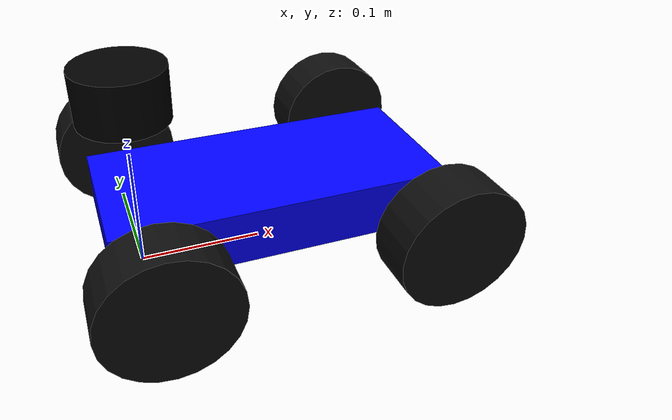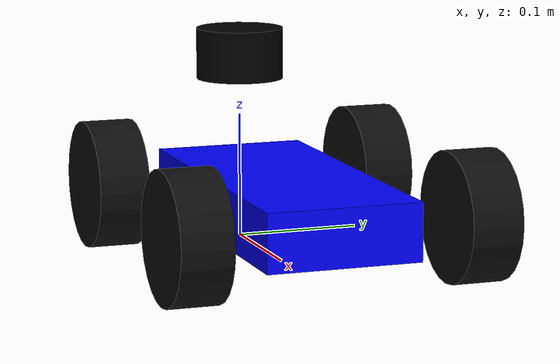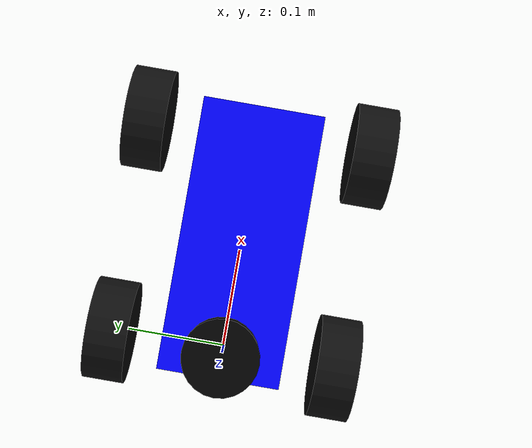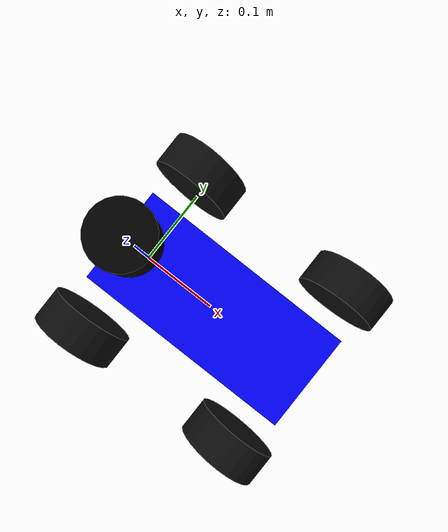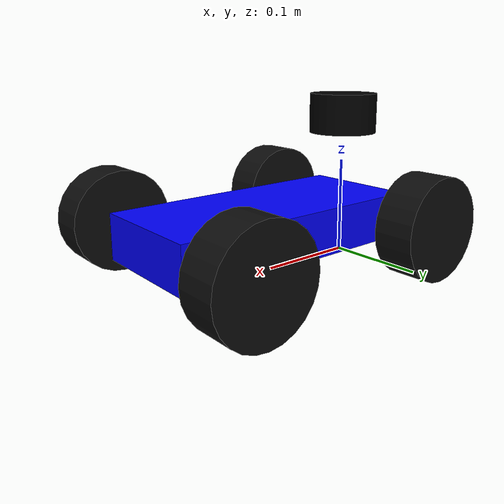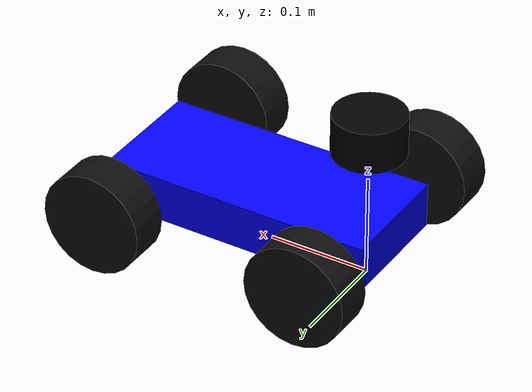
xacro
<?xml version="1.0"?>

<robot name="rl_robot"
       xmlns:xacro="http://www.ros.org/wiki/xacro">

  <xacro:arg name="drive_mode" default="diff"/>
  <xacro:property name="drive_mode" value="$(arg drive_mode)"/>

  <xacro:property name="chassis_length" value="0.270"/>
  <xacro:property name="chassis_width"  value="0.1205"/>
  <xacro:property name="chassis_height" value="0.045"/>
  <xacro:property name="chassis_mass"   value="2.5"/>

  <!-- MEASURED -->
  <xacro:property name="wheelbase"      value="0.213"/>
  <xacro:property name="track_width"    value="0.222"/>
  <xacro:property name="wheel_radius"   value="0.0505"/>

  <xacro:property name="wheel_width"    value="0.040"/>
  <xacro:property name="wheel_mass"     value="0.20"/>

  <!-- STILL TO VERIFY AT THE KNUCKLE, NOT THE SERVO.
         25 deg -> R = 0.457 m
         30 deg -> R = 0.369 m   (value used)
         35 deg -> R = 0.304 m -->
  <xacro:property name="max_steer"      value="0.5236"/>

  <xacro:property name="ground_clearance" value="0.025"/>

  <!-- Plate centre relative to the rear axle. Overhang is
       (0.270 - 0.213)/2 = 0.0285 m at each end, so the plate
       centre sits wheelbase/2 ahead of the rear axle. -->
  <xacro:property name="chassis_x" value="${wheelbase/2}"/>

  <xacro:property name="chassis_z"
                  value="${ground_clearance - wheel_radius + chassis_height/2}"/>
  <xacro:property name="chassis_top"
                  value="${chassis_z + chassis_height/2}"/>

  <!-- =====================================================
       LIDAR GEOMETRY - RPLIDAR A1M8
       ===================================================== -->

  <xacro:property name="lidar_radius" value="0.035"/>
  <xacro:property name="lidar_height" value="0.041"/>
  <xacro:property name="lidar_mass"   value="0.17"/>

  <!-- Must clear the 101 mm tyres (tops at 0.1010 m). 0.060 m
       puts the beam plane at 0.1505 m, ~50 mm clear. Maze walls
       are 0.50 m tall, so that is fine. -->
  <xacro:property name="lidar_standoff" value="0.060"/>

  <xacro:property name="lidar_z"
                  value="${chassis_top + lidar_standoff + lidar_height/2}"/>

  <!-- A1M8 is ~1% of range. Set 0.0 for noise-free scans. -->
  <xacro:property name="lidar_noise_stddev" value="0.01"/>

  <!-- =====================================================
       INERTIA MACROS
       ===================================================== -->

  <xacro:macro name="box_inertia" params="m x y z x0:=0 y0:=0 z0:=0">
    <inertial>
      <origin xyz="${x0} ${y0} ${z0}" rpy="0 0 0"/>
      <mass value="${m}"/>
      <inertia
        ixx="${m*(y*y + z*z)/12.0}"
        ixy="0.0"
        ixz="0.0"
        iyy="${m*(x*x + z*z)/12.0}"
        iyz="0.0"
        izz="${m*(x*x + y*y)/12.0}"/>
    </inertial>
  </xacro:macro>

  <xacro:macro name="wheel_inertia" params="m r l">
    <inertial>
      <origin xyz="0 0 0" rpy="1.5708 0 0"/>
      <mass value="${m}"/>
      <inertia
        ixx="${m*(3.0*r*r + l*l)/12.0}"
        ixy="0.0"
        ixz="0.0"
        iyy="${m*(3.0*r*r + l*l)/12.0}"
        iyz="0.0"
        izz="${m*r*r/2.0}"/>
    </inertial>
  </xacro:macro>

  <!-- =====================================================
       BASE FOOTPRINT (on the rear axle, projected to ground)
       ===================================================== -->

  <link name="base_footprint"/>

  <joint name="base_footprint_joint" type="fixed">
    <parent link="base_footprint"/>
    <child  link="base_link"/>
    <origin xyz="0 0 ${wheel_radius}" rpy="0 0 0"/>
  </joint>

  <!-- =====================================================
       BASE LINK
       ===================================================== -->

  <link name="base_link">

    <visual>
      <origin xyz="${chassis_x} 0 ${chassis_z}" rpy="0 0 0"/>
      <geometry>
        <box size="${chassis_length} ${chassis_width} ${chassis_height}"/>
      </geometry>
      <material name="blue">
        <color rgba="0 0 1 1"/>
      </material>
    </visual>

    <collision>
      <origin xyz="${chassis_x} 0 ${chassis_z}" rpy="0 0 0"/>
      <geometry>
        <box size="${chassis_length} ${chassis_width} ${chassis_height}"/>
      </geometry>
    </collision>

    <xacro:box_inertia
      m="${chassis_mass}"
      x="${chassis_length}"
      y="${chassis_width}"
      z="${chassis_height}"
      x0="${chassis_x}"
      z0="${chassis_z}"/>

  </link>

  <!-- =====================================================
       WHEEL / KNUCKLE MACROS
       ===================================================== -->

  <xacro:macro name="wheel_link" params="name">
    <link name="${name}_link">

      <visual>
        <origin xyz="0 0 0" rpy="1.5708 0 0"/>
        <geometry>
          <cylinder radius="${wheel_radius}" length="${wheel_width}"/>
        </geometry>
        <material name="black">
          <color rgba="0.05 0.05 0.05 1"/>
        </material>
      </visual>

      <collision>
        <origin xyz="0 0 0" rpy="1.5708 0 0"/>
        <geometry>
          <cylinder radius="${wheel_radius}" length="${wheel_width}"/>
        </geometry>
      </collision>

      <xacro:wheel_inertia
        m="${wheel_mass}"
        r="${wheel_radius}"
        l="${wheel_width}"/>

    </link>
  </xacro:macro>

  <xacro:macro name="knuckle_link" params="name">
    <link name="${name}_link">
      <visual>
        <origin xyz="0 0 0" rpy="0 0 0"/>
        <geometry>
          <box size="0.02 0.02 0.03"/>
        </geometry>
        <material name="knuckle_gray">
          <color rgba="0.4 0.4 0.4 1"/>
        </material>
      </visual>
      <xacro:box_inertia m="0.05" x="0.02" y="0.02" z="0.03"/>
    </link>
  </xacro:macro>

  <xacro:wheel_link name="front_left_wheel"/>
  <xacro:wheel_link name="front_right_wheel"/>
  <xacro:wheel_link name="rear_left_wheel"/>
  <xacro:wheel_link name="rear_right_wheel"/>

  <xacro:knuckle_link name="front_left_knuckle"/>
  <xacro:knuckle_link name="front_right_knuckle"/>

  <!-- =====================================================
       REAR AXLE - at the origin, driven in both modes
       ===================================================== -->

  <joint name="rear_left_wheel_joint" type="continuous">
    <parent link="base_link"/>
    <child  link="rear_left_wheel_link"/>
    <origin xyz="0 ${track_width/2} 0" rpy="0 0 0"/>
    <axis xyz="0 1 0"/>
    <dynamics damping="0.05" friction="0.02"/>
  </joint>

  <joint name="rear_right_wheel_joint" type="continuous">
    <parent link="base_link"/>
    <child  link="rear_right_wheel_link"/>
    <origin xyz="0 ${-track_width/2} 0" rpy="0 0 0"/>
    <axis xyz="0 1 0"/>
    <dynamics damping="0.05" friction="0.02"/>
  </joint>

  <!-- =====================================================
       FRONT STEERING JOINTS
       ===================================================== -->

  <xacro:if value="${drive_mode == 'diff'}">

    <joint name="front_left_steering_joint" type="fixed">
      <parent link="base_link"/>
      <child  link="front_left_knuckle_link"/>
      <origin xyz="${wheelbase} ${track_width/2} 0" rpy="0 0 0"/>
    </joint>

    <joint name="front_right_steering_joint" type="fixed">
      <parent link="base_link"/>
      <child  link="front_right_knuckle_link"/>
      <origin xyz="${wheelbase} ${-track_width/2} 0" rpy="0 0 0"/>
    </joint>

  </xacro:if>

  <xacro:if value="${drive_mode == 'ackermann'}">

    <joint name="front_left_steering_joint" type="revolute">
      <parent link="base_link"/>
      <child  link="front_left_knuckle_link"/>
      <origin xyz="${wheelbase} ${track_width/2} 0" rpy="0 0 0"/>
      <axis xyz="0 0 1"/>
      <limit lower="${-max_steer}" upper="${max_steer}"
             effort="10.0" velocity="5.0"/>
      <dynamics damping="0.1" friction="0.05"/>
    </joint>

    <joint name="front_right_steering_joint" type="revolute">
      <parent link="base_link"/>
      <child  link="front_right_knuckle_link"/>
      <origin xyz="${wheelbase} ${-track_width/2} 0" rpy="0 0 0"/>
      <axis xyz="0 0 1"/>
      <limit lower="${-max_steer}" upper="${max_steer}"
             effort="10.0" velocity="5.0"/>
      <dynamics damping="0.1" friction="0.05"/>
    </joint>

    <link name="steering_wheel_link">
      <xacro:box_inertia m="0.01" x="0.01" y="0.01" z="0.01"/>
    </link>

    <joint name="steering_wheel_joint" type="revolute">
      <parent link="base_link"/>
      <child  link="steering_wheel_link"/>
      <origin xyz="${chassis_x} 0 ${chassis_top}" rpy="0 0 0"/>
      <axis xyz="0 0 1"/>
      <limit lower="-7.85" upper="7.85" effort="1.0" velocity="10.0"/>
    </joint>

  </xacro:if>

  <joint name="front_left_wheel_joint" type="continuous">
    <parent link="front_left_knuckle_link"/>
    <child  link="front_left_wheel_link"/>
    <origin xyz="0 0 0" rpy="0 0 0"/>
    <axis xyz="0 1 0"/>
    <dynamics damping="0.02" friction="0.0"/>
  </joint>

  <joint name="front_right_wheel_joint" type="continuous">
    <parent link="front_right_knuckle_link"/>
    <child  link="front_right_wheel_link"/>
    <origin xyz="0 0 0" rpy="0 0 0"/>
    <axis xyz="0 1 0"/>
    <dynamics damping="0.02" friction="0.0"/>
  </joint>

  <link name="lidar_link">

    <visual>
      <origin xyz="0 0 0" rpy="0 0 0"/>
      <geometry>
        <cylinder radius="${lidar_radius}" length="${lidar_height}"/>
      </geometry>
      <material name="lidar_black">
        <color rgba="0 0 0 1"/>
      </material>
    </visual>

    <inertial>
      <origin xyz="0 0 0" rpy="0 0 0"/>
      <mass value="${lidar_mass}"/>
      <inertia ixx="0.0001" ixy="0.0" ixz="0.0"
               iyy="0.0001" iyz="0.0" izz="0.0001"/>
    </inertial>

  </link>

  <joint name="lidar_joint" type="fixed">
    <parent link="base_link"/>
    <child  link="lidar_link"/>
    <origin xyz="0 0 ${lidar_z}" rpy="0 0 0"/>
  </joint>

  <gazebo reference="lidar_link">

    <material>Gazebo/Black</material>

    <sensor name="lidar_sensor" type="ray">

      <pose>0 0 0 0 0 0</pose>
      <visualize>true</visualize>
      <update_rate>5.5</update_rate>
      <always_on>true</always_on>

      <ray>
        <scan>
          <horizontal>
            <samples>360</samples>
            <resolution>1</resolution>
            <min_angle>-3.14159</min_angle>
            <max_angle>3.14159</max_angle>
          </horizontal>
        </scan>

        <range>
          <min>0.15</min>
          <max>6.0</max>
          <resolution>0.01</resolution>
        </range>

        <noise>
          <type>gaussian</type>
          <mean>0.0</mean>
          <stddev>${lidar_noise_stddev}</stddev>
        </noise>
      </ray>

      <plugin name="gazebo_ros_lidar"
              filename="libgazebo_ros_ray_sensor.so">
        <ros>
          <namespace>/</namespace>
          <remapping>~/out:=scan</remapping>
        </ros>
        <output_type>sensor_msgs/LaserScan</output_type>
        <frame_name>lidar_link</frame_name>
      </plugin>

    </sensor>

  </gazebo>

  <!-- =====================================================
       SURFACE PROPERTIES
       ===================================================== -->

  <gazebo reference="base_link">
    <material>Gazebo/Blue</material>
  </gazebo>

  <xacro:macro name="wheel_surface" params="name mu">
    <gazebo reference="${name}_link">
      <material>Gazebo/Black</material>
      <mu1>${mu}</mu1>
      <mu2>${mu}</mu2>
      <kp>1000000.0</kp>
      <kd>1.0</kd>
      <minDepth>0.001</minDepth>
      <maxVel>0.1</maxVel>
    </gazebo>
  </xacro:macro>

  <xacro:if value="${drive_mode == 'diff'}">
    <xacro:wheel_surface name="rear_left_wheel"   mu="1.0"/>
    <xacro:wheel_surface name="rear_right_wheel"  mu="1.0"/>
    <xacro:wheel_surface name="front_left_wheel"  mu="0.02"/>
    <xacro:wheel_surface name="front_right_wheel" mu="0.02"/>
  </xacro:if>

  <!-- True Ackermann needs lateral grip on all four or it
       understeers straight through every corner. -->
  <xacro:if value="${drive_mode == 'ackermann'}">
    <xacro:wheel_surface name="rear_left_wheel"   mu="1.0"/>
    <xacro:wheel_surface name="rear_right_wheel"  mu="1.0"/>
    <xacro:wheel_surface name="front_left_wheel"  mu="1.0"/>
    <xacro:wheel_surface name="front_right_wheel" mu="1.0"/>
    <gazebo reference="front_left_knuckle_link">
      <material>Gazebo/Grey</material>
    </gazebo>
    <gazebo reference="front_right_knuckle_link">
      <material>Gazebo/Grey</material>
    </gazebo>
  </xacro:if>

  <xacro:if value="${drive_mode == 'diff'}">

    <gazebo>

      <plugin name="diff_drive"
              filename="libgazebo_ros_diff_drive.so">

        <ros>
          <namespace>/</namespace>
        </ros>

        <left_joint>rear_left_wheel_joint</left_joint>
        <right_joint>rear_right_wheel_joint</right_joint>

        <wheel_separation>${track_width}</wheel_separation>
        <wheel_diameter>${2*wheel_radius}</wheel_diameter>

        <max_wheel_torque>4.0</max_wheel_torque>
        <max_wheel_acceleration>20.0</max_wheel_acceleration>

        <command_topic>cmd_vel</command_topic>
        <odometry_topic>odom</odometry_topic>
        <odometry_frame>odom</odometry_frame>
        <robot_base_frame>base_footprint</robot_base_frame>

        <publish_odom>true</publish_odom>
        <publish_odom_tf>true</publish_odom_tf>
        <publish_wheel_tf>true</publish_wheel_tf>

      </plugin>

    </gazebo>

  </xacro:if>

  <xacro:if value="${drive_mode == 'ackermann'}">

    <gazebo>

      <plugin name="ackermann_drive"
              filename="libgazebo_ros_ackermann_drive.so">

        <ros>
          <namespace>/</namespace>
        </ros>

        <update_rate>100.0</update_rate>

        <front_left_joint>front_left_wheel_joint</front_left_joint>
        <front_right_joint>front_right_wheel_joint</front_right_joint>
        <rear_left_joint>rear_left_wheel_joint</rear_left_joint>
        <rear_right_joint>rear_right_wheel_joint</rear_right_joint>

        <left_steering_joint>front_left_steering_joint</left_steering_joint>
        <right_steering_joint>front_right_steering_joint</right_steering_joint>
        <steering_wheel_joint>steering_wheel_joint</steering_wheel_joint>

        <max_steer>${max_steer}</max_steer>
        <max_steering_angle>7.85</max_steering_angle>
        <max_speed>1.0</max_speed>

        <left_steering_pid_gain>10.0 0.0 0.5</left_steering_pid_gain>
        <left_steering_i_range>0 0</left_steering_i_range>

        <right_steering_pid_gain>10.0 0.0 0.5</right_steering_pid_gain>
        <right_steering_i_range>0 0</right_steering_i_range>

        <linear_velocity_pid_gain>20.0 0.0 1.0</linear_velocity_pid_gain>
        <linear_velocity_i_range>0 0</linear_velocity_i_range>

        <publish_odom>true</publish_odom>
        <publish_odom_tf>true</publish_odom_tf>
        <publish_wheel_tf>true</publish_wheel_tf>
        <publish_distance>true</publish_distance>

        <odometry_frame>odom</odometry_frame>
        <robot_base_frame>base_footprint</robot_base_frame>

      </plugin>

    </gazebo>

  </xacro:if>

</robot>
